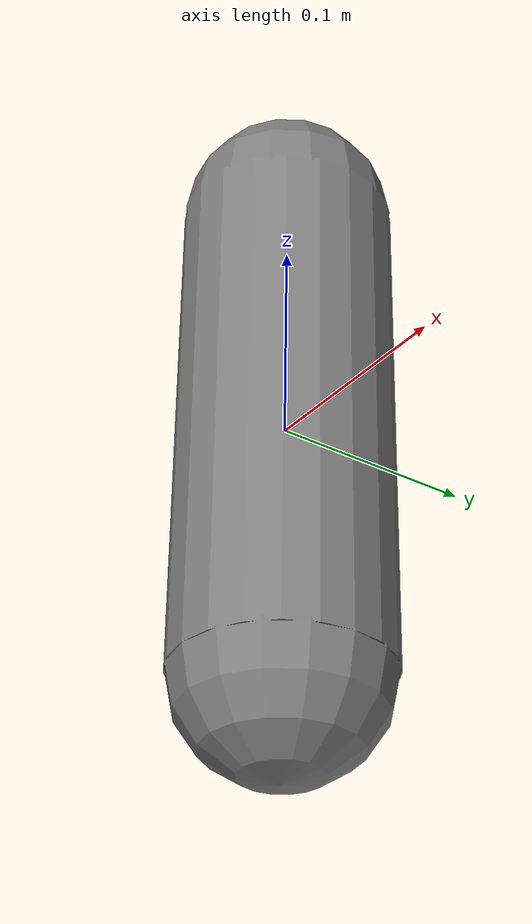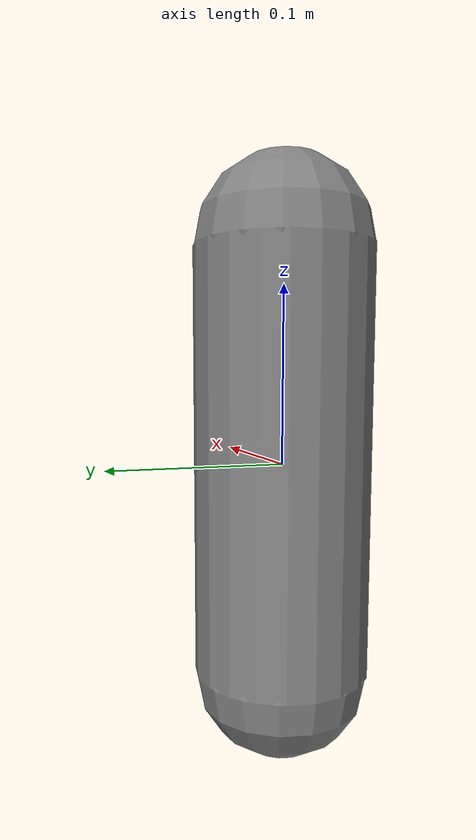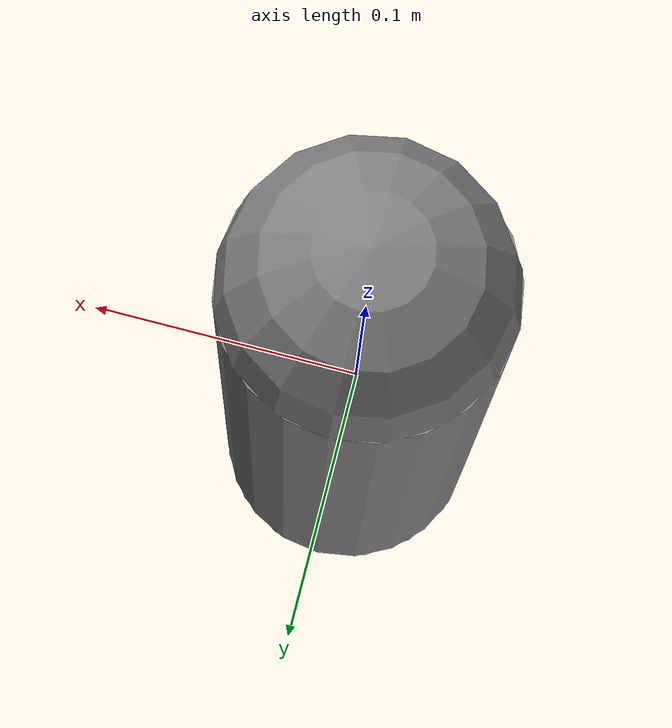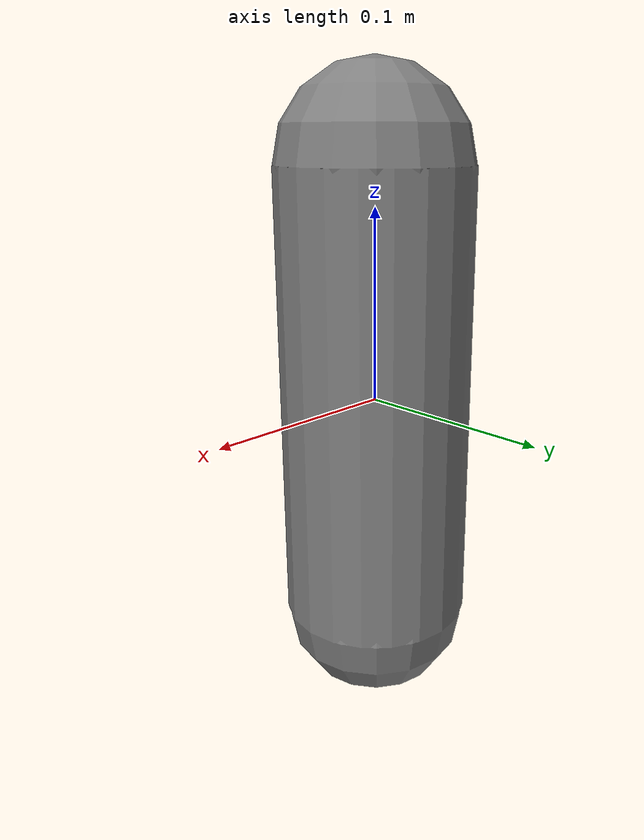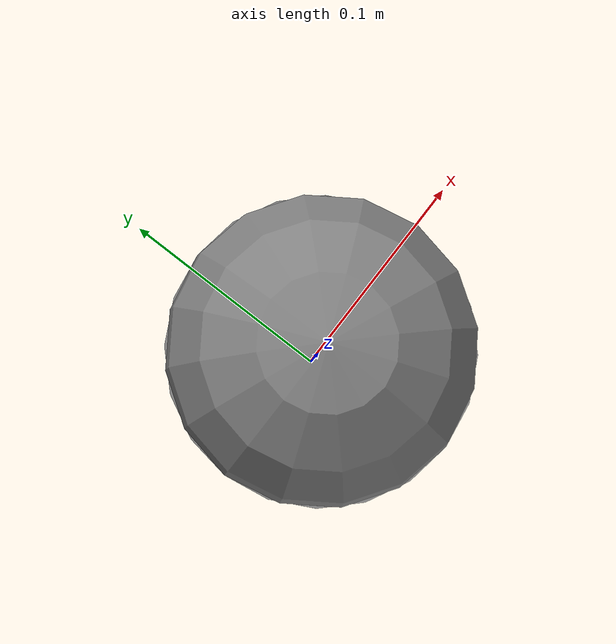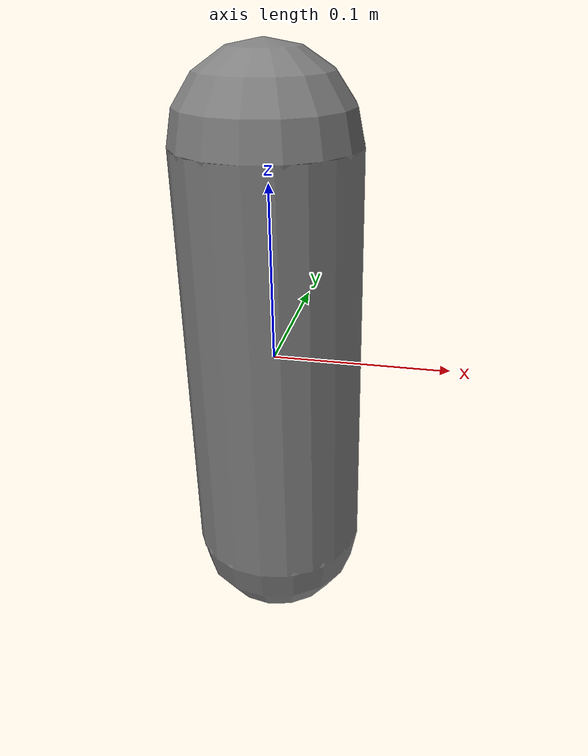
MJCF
<mujoco model="sweep_capsule_capsule_mg">
  <worldbody>
    <body name="a"><freejoint/><geom name="ga" type="capsule" size="0.05 0.12" margin="0.02" gap="0.03" mass="1"/></body>
    <body name="b"><freejoint/><geom name="gb" type="capsule" size="0.05 0.12" margin="0.02" gap="0.03" mass="1"/></body>
  </worldbody>
</mujoco>
